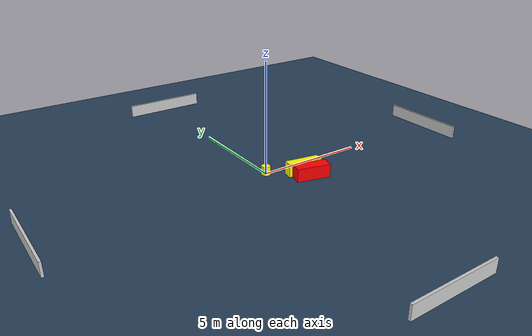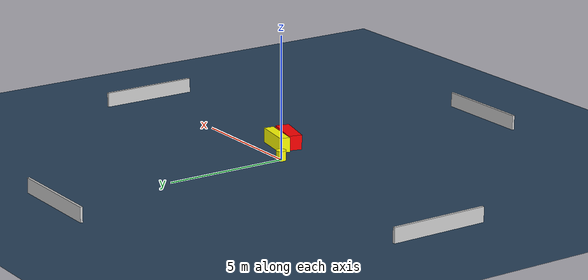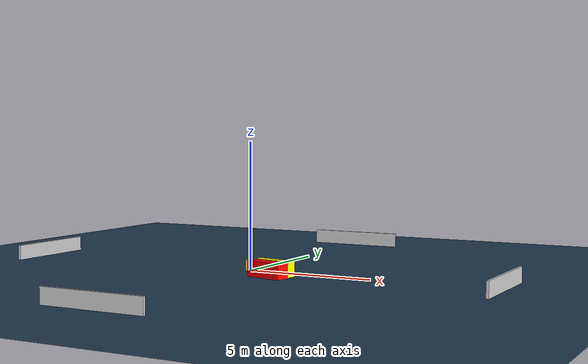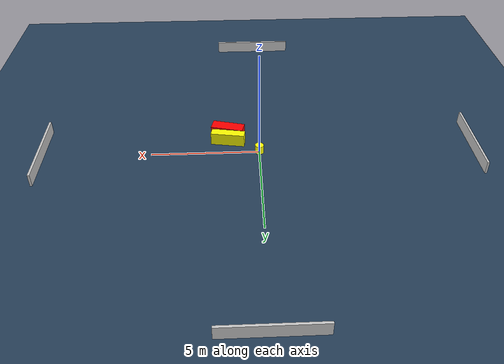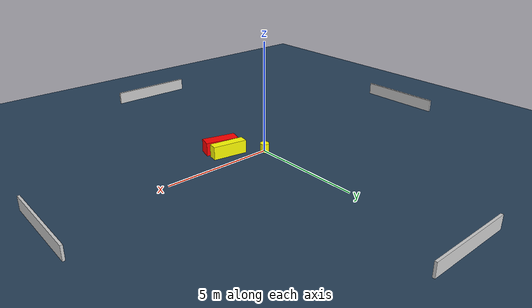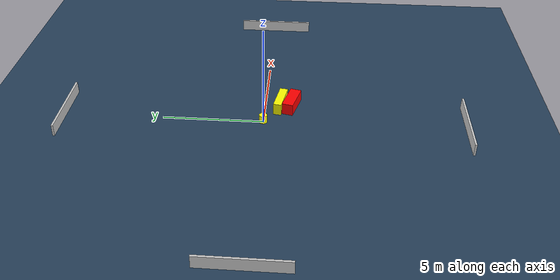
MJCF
<?xml version="1.0" ?>
<mujoco model="generated_environment">
  <option timestep="0.01" integrator="RK4" cone="elliptic"/>
  <default>
    <geom density="1"/>
  </default>
  <asset>
    <texture builtin="gradient" height="3072" name="skybox" rgb1="0.3 0.5 0.7" rgb2="0 0 0" type="skybox" width="512"/>
    <texture builtin="checker" height="300" name="groundplane" rgb1="0.2 0.3 0.4" rgb2="0.1 0.2 0.3" type="2d" width="300"/>
    <material name="groundplane" reflectance="0.2" texrepeat="5 5" texture="groundplane"/>
  </asset>
  <worldbody>
    <light dir="0 0 -1" directional="true" pos="0 0 1.5"/>
    <geom condim="3" friction="0.5 0.005 0.001" material="groundplane" name="floor" pos="0 0 0" size="0 0 0.05" type="plane"/>
    <body name="walls">
      <geom name="wall_1" condim="4" pos="-10.0 0.0 0.3" rgba="0.800000011920929 0.800000011920929 0.800000011920929 1.0" size="0.05 2.0 0.3" type="box"/>
      <geom name="wall_2" condim="4" pos="10.0 0.0 0.3" rgba="0.800000011920929 0.800000011920929 0.800000011920929 1.0" size="0.05 2.0 0.3" type="box"/>
      <geom name="wall_3" condim="4" pos="0.0 -10.0 0.3" rgba="0.800000011920929 0.800000011920929 0.800000011920929 1.0" size="2.0 0.05 0.3" type="box"/>
      <geom name="wall_4" condim="4" pos="0.0 10.0 0.3" rgba="0.800000011920929 0.800000011920929 0.800000011920929 1.0" size="2.0 0.05 0.3" type="box"/>
    </body>
    <body name="robot">
      <joint name="joint_x" type="slide" pos="0 0 0" axis="1 0 0"/>
      <joint name="joint_y" type="slide" pos="0 0 0" axis="0 1 0"/>
      <geom name="robot" type="cylinder" pos="0.0 0.0 0.2" size="0.2 0.2 0.0" mass="5.0" friction="1.0 0.005 0.0001" condim="4" rgba="1.0 1.0 0.0 1.0"/>
    </body>
    <body name="obstacle_1_movable">
      <geom name="obstacle_1_movable" condim="4" pos="1.4529567434743655 -0.778756951107733 0.3" euler="0 0 260.44122034450396" friction="0.0 0.005 0.001" rgba="1.0 1.0 0.0 1.0" size="0.20274947597349224 0.7853089715941681 0.3" type="box" mass="0.1"/>
      <joint type="free"/>
    </body>
    <body name="obstacle_2_static">
      <geom name="obstacle_2_static" condim="4" pos="1.4588680121495898 -1.341973328617962 0.3" euler="0 0 165.60272088416724" friction="0.0 0.005 0.001" rgba="1.0 0.0 0.0 1.0" size="0.7603503408919001 0.2800847101798264 0.3" type="box"/>
    </body>
  </worldbody>
  <actuator>
    <motor name="actuator_x" joint="joint_x" gear="1" ctrlrange="-1 1"/>
    <motor name="actuator_y" joint="joint_y" gear="1" ctrlrange="-1 1"/>
  </actuator>
</mujoco>
